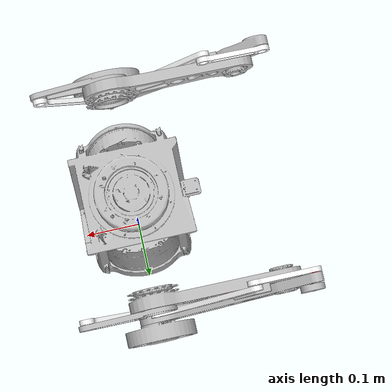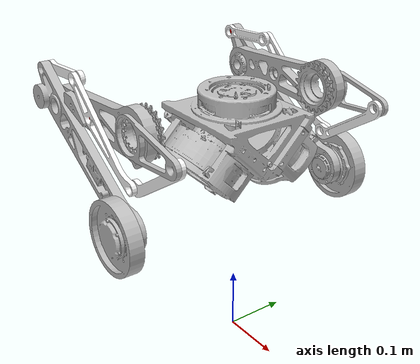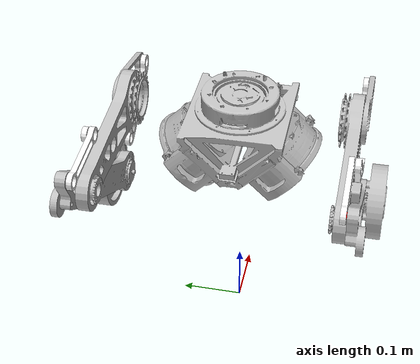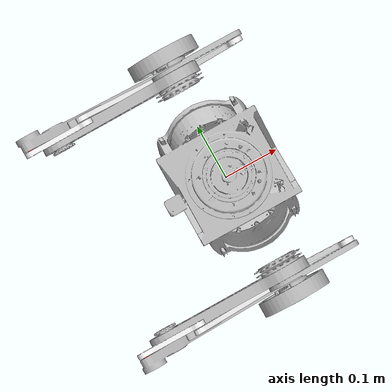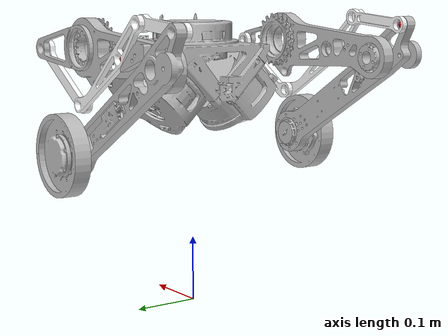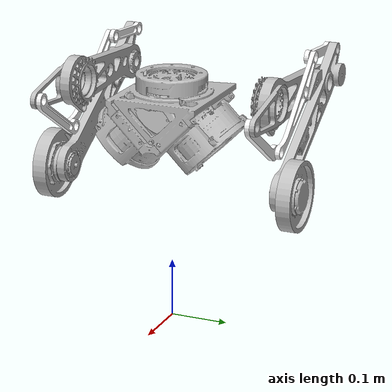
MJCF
<?xml version='1.0' encoding='utf-8'?>
<mujoco model="wheel_leg">
  <default>
    <geom contype="1" conaffinity="0"/>
  </default>
  <compiler angle="radian" meshdir="meshes/" />

  <asset>
    <mesh name="base_link" file="base_link.STL" />
    <mesh name="left_leg_hip1_link" file="left_leg_hip1_link.STL" />
    <mesh name="left_leg_knee_link" file="left_leg_knee_link.STL" />
    <mesh name="left_leg_wheel_link" file="left_leg_wheel_link.STL" />
    <mesh name="left_leg_hip2_link" file="left_leg_hip2_link.STL" />
    <mesh name="left_leg_knee_father1_link" file="left_leg_knee_father1_link.STL" />
    <mesh name="left_leg_knee_father2_link" file="left_leg_knee_father2_link.STL" />
    <mesh name="left_leg_knee_father3_link" file="left_leg_knee_father3_link.STL" />

    <mesh name="right_leg_hip1_link" file="right_leg_hip1_link.STL" />
    <mesh name="right_leg_knee_link" file="right_leg_knee_link.STL" />
    <mesh name="right_leg_wheel_link" file="right_leg_wheel_link.STL" />
    <mesh name="right_leg_hip2_link" file="right_leg_hip2_link.STL" />
    <mesh name="right_leg_knee_father1_link" file="right_leg_knee_father1_link.STL" />
    <mesh name="right_leg_knee_father2_link" file="right_leg_knee_father2_link.STL" />
    <mesh name="right_leg_knee_father3_link" file="right_leg_knee_father3_link.STL" />
  </asset>

  <worldbody>
    <body name="base_link" pos="0 0 0.4">
      <freejoint name="root_joint"/>
      <inertial pos="-0.00746094 0.00090321 0.00604838" mass="16.54216288" fullinertia="0.41748778 0.41356974 0.49536783 0.00046838 0.01213606 -0.00410317" />
      <geom type="mesh" rgba="0.75294 0.75294 0.75294 1" mesh="base_link" />

      <body name="left_leg_hip1_link" pos="0 0.187 0">
        <inertial pos="-0.086207 -0.0093081 -0.0071445" mass="0.53238" fullinertia="0.00028513 0.0035718 0.0033255 3.881e-05 -0.00016116 -4.2e-07" />
        <joint name="left_leg_hip1_joint" pos="0 0 0" axis="0 -1 0" damping="0.1" />
        <site name="left_loop_site_hip1" pos="-0.11304 0 -0.00906" size="0.005" rgba="1 0 0 1"/>
        <geom type="mesh" rgba="0.75294 0.75294 0.75294 1" mesh="left_leg_hip1_link" />

        <body name="left_leg_knee_link" pos="-0.20933 0 -0.016769">
          <inertial pos="0.06010178 0.00644376 -0.04165431" mass="0.34933979" fullinertia="0.00107659 0.00354276 0.00251609 -9.93e-06 0.00150980 1.318e-05" />
          <joint name="left_leg_knee_joint" pos="0 0 0" axis="0 1 0" damping="0.05" />
          <site name="left_loop_site_knee" pos="-0.04553 0 0.04915" size="0.005" rgba="1 0 0 1"/>
          <geom type="mesh" rgba="0.75294 0.75294 0.75294 1" mesh="left_leg_knee_link" />

          <body name="left_leg_wheel_link" pos="0.2111 0 -0.135">
            <inertial pos="0.00020765 0.030642 -0.00012623" mass="0.28258" fullinertia="0.00029613 0.00053291 0.00029565 6.6e-07 -4.4e-07 -3.9e-07" />
            <joint name="left_leg_wheel_joint" pos="0 0 0" axis="0 1 0" damping="0.01" />
            <geom type="mesh" rgba="0.75294 0.75294 0.75294 1" mesh="left_leg_wheel_link" />
          </body>
        </body>
      </body>

      <body name="left_leg_hip2_link" pos="0 0.187 0">
        <inertial pos="0.027043 -0.0063817 -0.0015296" mass="0.12267" fullinertia="6.524e-05 0.0002766 0.00025765 -3.832e-05 1.092e-05 2.17e-06" />
        <joint name="left_leg_hip2_joint" pos="0 0 0" axis="0 1 0" damping="0.1" />
        <geom type="mesh" rgba="0.75294 0.75294 0.75294 1" mesh="left_leg_hip2_link" />

        <body name="left_leg_knee_father1_link" pos="0.11322 0 -0.0064037">
          <inertial pos="-0.052695 -0.0035417 -0.042635" mass="0.028977" fullinertia="2.2144e-05 6.947e-05 4.7639e-05 -1.7925e-08 -3.0736e-05 2.684e-08" />
          <joint name="left_leg_knee_father1_joint" pos="0 0 0" axis="0 1 0" damping="0.02" />
          <geom type="mesh" rgba="1 1 1 1" mesh="left_leg_knee_father1_link" />

          <body name="left_leg_knee_father2_link" pos="-0.11227 0 -0.074976">
            <inertial pos="-0.083089 0.0049101 0.056116" mass="0.04884" fullinertia="7.9882e-05 0.00020875 0.00012937 -3.5508e-08 9.7996e-05 3.7273e-08" />
            <joint name="left_leg_knee_father2_joint" pos="0 0 0" axis="0 1 0" damping="0.02" />
            <site name="left_loop_site_father2" pos="-0.11399 0 0.07232" size="0.005" rgba="1 0 0 1"/>
            <geom type="mesh" rgba="1 1 1 1" mesh="left_leg_knee_father2_link" />

            <body name="left_leg_knee_father3_link" pos="-0.15952 0 0.12148">
              <inertial pos="-0.048146 -0.0040765 -0.0038569" mass="0.020187" fullinertia="1.0501e-06 2.6055e-05 2.5224e-05 0 -1.949e-06 0" />
              <joint name="left_leg_knee_father3_joint" pos="0 0 0" axis="0 1 0" damping="0.02" />
              <site name="left_loop_site_father3" pos="-0.09629 0 -0.00771" size="0.005" rgba="1 0 0 1"/>
              <geom type="mesh" rgba="1 1 1 1" mesh="left_leg_knee_father3_link" />
            </body>
          </body>
        </body>
      </body>

      <body name="right_leg_hip1_link" pos="0 -0.188 0">
        <inertial pos="-0.086207 0.010308 -0.0071445" mass="0.53238" fullinertia="0.00028513 0.0035718 0.0033255 -3.881e-05 -0.00016116 4.2e-07" />
        <joint name="right_leg_hip1_joint" pos="0 0 0" axis="0 1 0" damping="0.1" />
        <site name="right_loop_site_hip1" pos="-0.11304 0 -0.00906" size="0.005" rgba="1 0 0 1"/>
        <geom type="mesh" rgba="0.75294 0.75294 0.75294 1" mesh="right_leg_hip1_link" />

        <body name="right_leg_knee_link" pos="-0.20933 0 -0.016769">
          <inertial pos="0.06010178 -0.00544376 -0.04165431" mass="0.34934" fullinertia="0.00107659 0.00354276 0.00251609 9.93e-06 0.0015098 -1.318e-05" />
          <joint name="right_leg_knee_joint" pos="0 0 0" axis="0 -1 0" damping="0.05" />
          <site name="right_loop_site_knee" pos="-0.04553 0 0.04915" size="0.005" rgba="1 0 0 1"/>
          <geom type="mesh" rgba="0.75294 0.75294 0.75294 1" mesh="right_leg_knee_link" />

          <body name="right_leg_wheel_link" pos="0.2111 0 -0.135">
            <inertial pos="0.00019389 -0.02535964 -0.00010647" mass="0.36500947" fullinertia="0.00033416 0.00055017 0.00033351 -4.9e-07 -4.8e-07 2.6e-07" />
            <joint name="right_leg_wheel_joint" pos="0 0 0" axis="0 -1 0" damping="0.01" />
            <geom type="mesh" rgba="0.75294 0.75294 0.75294 1" mesh="right_leg_wheel_link" />
          </body>
        </body>
      </body>

      <body name="right_leg_hip2_link" pos="0 -0.188 0">
        <inertial pos="0.027043 0.0073817 -0.0015296" mass="0.12267" fullinertia="6.524e-05 0.0002766 0.00025765 3.832e-05 1.092e-05 -2.17e-06" />
        <joint name="right_leg_hip2_joint" pos="0 0 0" axis="0 -1 0" damping="0.1" />
        <geom type="mesh" rgba="0.75294 0.75294 0.75294 1" mesh="right_leg_hip2_link" />

        <body name="right_leg_knee_father1_link" pos="0.11322 0 -0.0064037">
          <inertial pos="-0.052695 0.0045417 -0.042635" mass="0.028977" fullinertia="2.2144e-05 6.947e-05 4.7639e-05 1.7925e-08 -3.0736e-05 -2.684e-08" />
          <joint name="right_leg_knee_father1_joint" pos="0 0 0" axis="0 -1 0" damping="0.02" />
          <geom type="mesh" rgba="1 1 1 1" mesh="right_leg_knee_father1_link" />

          <body name="right_leg_knee_father2_link" pos="-0.11227 0 -0.074976">
            <inertial pos="-0.083089 -0.0039101 0.056116" mass="0.04884" fullinertia="7.9882e-05 0.00020875 0.00012937 3.5508e-08 9.7996e-05 -3.7273e-08" />
            <joint name="right_leg_knee_father2_joint" pos="0 0 0" axis="0 -1 0" damping="0.02" />
            <site name="right_loop_site_father2" pos="-0.11399 0 0.07232" size="0.005" rgba="1 0 0 1"/>
            <geom type="mesh" rgba="1 1 1 1" mesh="right_leg_knee_father2_link" />

            <body name="right_leg_knee_father3_link" pos="-0.15952 0 0.12148">
              <inertial pos="-0.048146 0.0050765 -0.0038569" mass="0.020187" fullinertia="1.0501e-06 2.6055e-05 2.5224e-05 0 -1.949e-06 0" />
              <joint name="right_leg_knee_father3_joint" pos="0 0 0" axis="0 -1 0" damping="0.02" />
              <site name="right_loop_site_father3" pos="-0.09629 0 -0.00771" size="0.005" rgba="1 0 0 1"/>
              <geom type="mesh" rgba="1 1 1 1" mesh="right_leg_knee_father3_link" />
            </body>
          </body>
        </body>
      </body>

    </body>
  </worldbody>

  <equality>
    <connect name="left_leg_loop1" site1="left_loop_site_hip1" site2="left_loop_site_father2" solref="0.001 1" solimp="0.99 0.99 0.01 0.5 2"/>
    <connect name="left_leg_loop2" site1="left_loop_site_knee" site2="left_loop_site_father3" solref="0.001 1" solimp="0.99 0.99 0.01 0.5 2"/>
    <connect name="right_leg_loop1" site1="right_loop_site_hip1" site2="right_loop_site_father2" solref="0.001 1" solimp="0.99 0.99 0.01 0.5 2"/>
    <connect name="right_leg_loop2" site1="right_loop_site_knee" site2="right_loop_site_father3" solref="0.001 1" solimp="0.99 0.99 0.01 0.5 2"/>
  </equality>

  <actuator>
    <general name="left_hip1_motor" joint="left_leg_hip1_joint" gainprm="1" ctrlrange="-30 30" />
    <general name="left_hip2_motor" joint="left_leg_hip2_joint" gainprm="1" ctrlrange="-30 30" />
    <general name="left_wheel_motor" joint="left_leg_wheel_joint" gainprm="1" ctrlrange="-10 10" />

    <general name="right_hip1_motor" joint="right_leg_hip1_joint" gainprm="1" ctrlrange="-30 30" />
    <general name="right_hip2_motor" joint="right_leg_hip2_joint" gainprm="1" ctrlrange="-30 30" />
    <general name="right_wheel_motor" joint="right_leg_wheel_joint" gainprm="1" ctrlrange="-10 10" />
  </actuator>

</mujoco>
